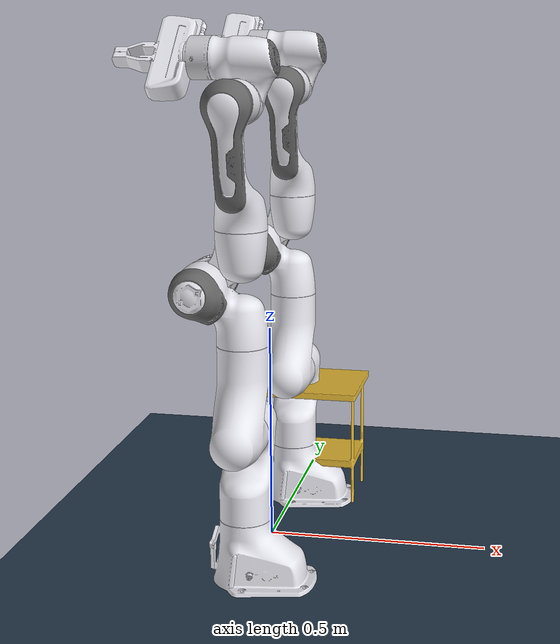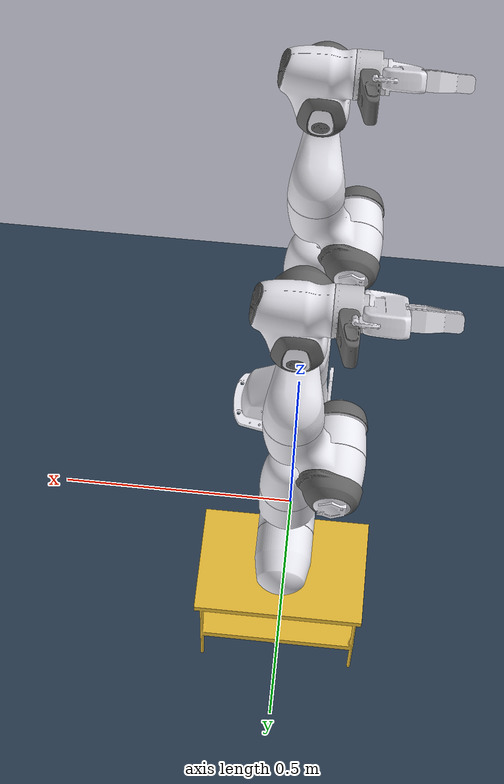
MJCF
<mujoco model="dual-panda v01">

    <include file="panda/assets/basic_scene.xml" />
    <include file="panda/assets/assets.xml" />
    <include file="panda/assets/gripper_assets.xml" />
    <include file="panda/assets/sensors.xml" />
    <compiler angle="radian" meshdir="" inertiagrouprange="0 0"/>
    <size nconmax="5000" njmax="5000"/>

    <!-- change this for different objects -->

    <include file="panda/assets/table.xml" />

    <compiler meshdir="" />
    <option noslip_iterations="20"> </option>
    <option cone="elliptic"> </option>
    <option><flag multiccd="enable"/></option>
    <option> <flag gravity="enable"/></option>
    <default>
        <default class='torso'>
            <geom group='0' contype='0' conaffinity='0' rgba=".95 .99 .92 1" />
        </default>/ </default>

    <worldbody>

        <body name='torso' childclass='torso'>

            <body name='leftarm' pos='0 -0.25 0' euler='0 0 3.14'>
                <include file="panda/assets/chainL.xml" />
            </body>

            <body name='rightarm' pos='0 0.25 0' euler='0 0 3.14'>
                <include file="panda/assets/chainR.xml" />
            </body>

        </body>

        <body name="collision_object" pos="0.0 0.3 0.2" quat="1 0 0 0">
            <joint type="free" name="object_virtual_joint" pos="0.0 0.0 0.0" damping="5" />
            <geom class="object_viz" mesh="table_viz" rgba="0.9019607843137255 0.7254901960784313 0.20392156862745098
            1" />
            <geom class="object_col" mesh="table2Part-0" />
            <geom class="object_col" mesh="table2Part-1" />
            <geom class="object_col" mesh="table2Part-2" />
            <geom class="object_col" mesh="table2Part-3" />
            <geom class="object_col" mesh="table2Part-4" />
            <geom class="object_col" mesh="table2Part-5" />
            <geom class="object_col" mesh="table2Part-6" />
            <geom class="object_col" mesh="table2Part-7" />
            <geom class="object_col" mesh="table2Part-8" />
            <geom class="object_col" mesh="table2Part-9" />
            <geom class="object_col" mesh="table2Part-10" />
            <geom class="object_col" mesh="table2Part-11" />
            <geom class="object_col" mesh="table2Part-12" />
            <geom class="object_col" mesh="table2Part-13" />
            <geom class="object_col" mesh="table2Part-14" />
            <geom class="object_col" mesh="table2Part-15" />
            <inertial pos="0 0 0" mass="4" diaginertia="6 2 4" />
        </body>

    </worldbody>

    <include file='panda/assets/actuatorL.xml' />
    <include file='panda/assets/gripper_actuatorL.xml' />
    <include file='panda/assets/actuatorR.xml' />
    <include file='panda/assets/gripper_actuatorR.xml' />
    <option timestep="0.002"/>

</mujoco>

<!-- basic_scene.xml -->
<mujocoinclude>
    <asset>
        <texture name="texplane" type="2d" builtin="checker" rgb1=".2 .3 .4" rgb2=".1 0.15 0.2"
                width="512" height="512"/>
        <material name="MatGnd" reflectance="0.5" texture="texplane" texrepeat="1 1" texuniform="true"/>
    </asset>

    <worldbody>
        <light directional="false" diffuse=".8 .8 .8" specular="0.3 0.3 0.3" pos="1  1 3" dir="-1 -1 -3"/>
        <light directional="false" diffuse=".8 .8 .8" specular="0.3 0.3 0.3" pos="1 -1 3" dir="-1 1 -3"/>
        <light directional="false" diffuse=".8 .8 .8" specular="0.3 0.3 0.3" pos="-1 0 3" dir="1 0 -3" />
        <geom name="ground" pos="0 0 0" size="5 5 10" material="MatGnd" type="plane" contype="1" conaffinity="1"/>
        <body name="targetL" mocap="true">
            <geom type="box" size=".05 .05 .05" contype="0" conaffinity="0" rgba=".6 .3 .3 0"/>
            <site type="sphere" size="0.01" rgba="0 0 1 0" group="1"/>
        </body>
        <body name="targetR" mocap="true">
            <geom type="box" size=".05 .05 .05" contype="0" conaffinity="0" rgba=".6 .3 .3 0"/>
            <site type="sphere" size="0.01" rgba="0 0 1 0" group="1"/>
        </body>
    </worldbody>
    <keyframe>
        <key name="home" qpos="-1.08336 -1.66423  -1.55909  -1.67529  1.46467  0.0244119  -2.12548 0.6570866009849246 -0.4437049375852182 0.8  -0.5 0.5 -0.5 0.5" ctrl="0 0 0 0 0 0 0"/>

        <!-- This is for monitor, set z as 0.157 -->

        <!-- this is for table -->

    </keyframe>
</mujocoinclude>

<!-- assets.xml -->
<mujocoinclude>
    <compiler angle="radian" />
    <option noslip_iterations="20"/>
    <option timestep="0.002"/>
    <size nuser_actuator="5"/>
    <option integrator="implicit"/>
    <asset>
        <mesh name="link0_col" file="./panda/meshes/collision/link0.stl"/>
        <mesh name="link1_col" file="./panda/meshes/collision/link1.stl"/>
        <mesh name="link2_col" file="./panda/meshes/collision/link2.stl"/>
        <mesh name="link3_col" file="./panda/meshes/collision/link3.stl"/>
        <mesh name="link4_col" file="./panda/meshes/collision/link4.stl"/>
        <mesh name="link5_col" file="./panda/meshes/collision/link5.stl"/>
        <mesh name="link6_col" file="./panda/meshes/collision/link6.stl"/>
        <mesh name="link7_col" file="./panda/meshes/collision/link7.stl"/>
        <mesh name="hand_col" file="./panda/meshes/collision/hand.stl"/>
        <mesh name="link0_viz" file="./panda/meshes/visual/link0.stl"/>
        <mesh name="link1_viz" file="./panda/meshes/visual/link1.stl"/>
        <mesh name="link2_viz" file="./panda/meshes/visual/link2.stl"/>
        <mesh name="link3_viz" file="./panda/meshes/visual/link3.stl"/>
        <mesh name="link3_dark_viz" file="./panda/meshes/visual/link3_dark.stl" scale="1.01 1.01 1.01"/>
        <mesh name="link4_viz" file="./panda/meshes/visual/link4.stl"/>
        <mesh name="link4_dark_viz" file="./panda/meshes/visual/link4_dark.stl" scale="1.01 1.01 1.01"/>
        <mesh name="link5_viz" file="./panda/meshes/visual/link5.stl"/>
        <mesh name="link5_dark_viz" file="./panda/meshes/visual/link5_dark.stl" scale="1.01 1.01 1.01"/>
        <mesh name="link6_viz" file="./panda/meshes/visual/link6.stl"/>
        <mesh name="link6_dark_viz" file="./panda/meshes/visual/link6_dark.stl" scale="1.01 1.01 1.01"/>
        <mesh name="link7_viz" file="./panda/meshes/visual/link7.stl"/>
        <mesh name="link7_dark_viz" file="./panda/meshes/visual/link7_dark.stl" scale="1.01 1.01 1.01"/>
        <mesh name="hand_viz" file="./panda/meshes/visual/hand.stl"/>
    </asset>

    <default>
        <default class = "object">
            <default class="object_viz">
                <geom contype="0" conaffinity="0" group="0" type="mesh" rgba=".92 .92 .95 1"/>
            </default>
            <default class="object_col">
                <geom contype="1" conaffinity="1" group="3" type="mesh" rgba=".5 .6 .7 1"/>
            </default>
        </default>
    </default>

    <default>
        <default class="panda">
            <joint pos="0 0 0" axis="0 0 1" limited="true"/>
            <default class="panda_viz">
                <geom contype="0" conaffinity="0" group="0" type="mesh" rgba=".92 .92 .95 1"/>
            </default>
            <default class="panda_grey_viz">
                <geom contype="0" conaffinity="0" group="0" type="mesh" rgba=".4 .4 .4 1"/>
            </default>

            <default class="panda_col">
                <geom contype="1" conaffinity="1" group="3" type="mesh" rgba=".5 .6 .7 1"/>
            </default>
            <default class="panda_arm">
                <joint damping="100"/>
            </default>
             <default class="panda_forearm">
                <joint damping="10"/>
            </default>
             <default class="panda_finger">
                <joint damping="10" armature='5'/>
                <geom friction="10 10 10" user="0" rgba="0.5 0.6 0.7 .4" contype="1" conaffinity="0" condim="6" group="3" />
                <position user="1002 40 2001 -0.0001 0.0001"/>
            </default>
        </default>
    </default>
</mujocoinclude>

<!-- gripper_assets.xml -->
<mujocoinclude>
    <asset>
        <mesh name="finger_col" file="./panda/meshes/collision/finger.stl" scale='1.75 1.0 1.75'/>
        <mesh name="finger_viz" file="./panda/meshes/visual/finger.stl" scale='1.75 1.0 1.75'/>
    </asset>

    <default>
        <default class="panda_overlay">
            <joint limited="false" damping="1000" armature="1" frictionloss="10"/>
            <geom contype="0" conaffinity="0" group="2" type="mesh" rgba=".42 0.42 0.42 .5"/>
        </default>
    </default>

    <sensor>
        <jointpos name="fr_fin_jp1" joint="left_panda_finger_joint1"/>
        <jointpos name="fr_fin_jp2" joint="left_panda_finger_joint2"/>
        <jointvel name="fr_fin_jv1" joint="left_panda_finger_joint1"/>
        <jointvel name="fr_fin_jv2" joint="left_panda_finger_joint2"/>
    </sensor>

</mujocoinclude>

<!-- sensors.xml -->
<mujocoinclude>

<!-- site force torque sensors -->

<!-- joint actuator force sensors -->
    <sensor>
        <jointactuatorfrc name="LAjaf1" joint="left_panda_joint1"/>
        <jointactuatorfrc name="LAjaf2" joint="left_panda_joint2"/>
        <jointactuatorfrc name="LAjaf3" joint="left_panda_joint3"/>
        <jointactuatorfrc name="LAjaf4" joint="left_panda_joint4"/>
        <jointactuatorfrc name="LAjaf5" joint="left_panda_joint5"/>
        <jointactuatorfrc name="LAjaf6" joint="left_panda_joint6"/>
        <jointactuatorfrc name="LAjaf7" joint="left_panda_joint7"/>

        <jointactuatorfrc name="RAjaf1" joint="right_panda_joint1"/>
        <jointactuatorfrc name="RAjaf2" joint="right_panda_joint2"/>
        <jointactuatorfrc name="RAjaf3" joint="right_panda_joint3"/>
        <jointactuatorfrc name="RAjaf4" joint="right_panda_joint4"/>
        <jointactuatorfrc name="RAjaf5" joint="right_panda_joint5"/>
        <jointactuatorfrc name="RAjaf6" joint="right_panda_joint6"/>
        <jointactuatorfrc name="RAjaf7" joint="right_panda_joint7"/>
    </sensor>

<!-- finger joint force sensors -->
    <sensor>
        <jointactuatorfrc name="LHjafF1" joint="left_panda_finger_joint1"/>
        <jointactuatorfrc name="LHjafF2" joint="left_panda_finger_joint2"/>
        <jointactuatorfrc name="RHjafF1" joint="right_panda_finger_joint1"/>
        <jointactuatorfrc name="RHjafF2" joint="right_panda_finger_joint2"/>
    </sensor>

</mujocoinclude>

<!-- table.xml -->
<mujocoinclude>
    <asset>
        <mesh name="table_viz" file="./panda/meshes/visual/objects/table.stl" scale="0.5 1 1" />
        <mesh name="tablePart-0" file="./panda/meshes/collision/objects/decompositions/table/tablePart-0.stl"
            scale="0.5 1 1" />
        <mesh name="tablePart-1" file="./panda/meshes/collision/objects/decompositions/table/tablePart-1.stl"
            scale="0.5 1 1" />
        <mesh name="tablePart-2" file="./panda/meshes/collision/objects/decompositions/table/tablePart-2.stl"
            scale="0.5 1 1" />
        <mesh name="tablePart-3" file="./panda/meshes/collision/objects/decompositions/table/tablePart-3.stl"
            scale="0.5 1 1" />
        <mesh name="tablePart-4" file="./panda/meshes/collision/objects/decompositions/table/tablePart-4.stl"
            scale="0.5 1 1" />
        <mesh name="tablePart-5" file="./panda/meshes/collision/objects/decompositions/table/tablePart-5.stl"
            scale="0.5 1 1" />
        <mesh name="tablePart-6" file="./panda/meshes/collision/objects/decompositions/table/tablePart-6.stl"
            scale="0.5 1 1" />
        <mesh name="tablePart-7" file="./panda/meshes/collision/objects/decompositions/table/tablePart-7.stl"
            scale="0.5 1 1" />
        <mesh name="tablePart-8" file="./panda/meshes/collision/objects/decompositions/table/tablePart-8.stl"
            scale="0.5 1 1" />
        <mesh name="tablePart-9" file="./panda/meshes/collision/objects/decompositions/table/tablePart-9.stl"
            scale="0.5 1 1" />
        <mesh name="tablePart-10" file="./panda/meshes/collision/objects/decompositions/table/tablePart-10.stl"
            scale="0.5 1 1" />
        <mesh name="tablePart-11" file="./panda/meshes/collision/objects/decompositions/table/tablePart-11.stl"
            scale="0.5 1 1" />
        <mesh name="tablePart-12" file="./panda/meshes/collision/objects/decompositions/table/tablePart-12.stl"
            scale="0.5 1 1" />
        <mesh name="tablePart-13" file="./panda/meshes/collision/objects/decompositions/table/tablePart-13.stl"
            scale="0.5 1 1" />
        <mesh name="tablePart-14" file="./panda/meshes/collision/objects/decompositions/table/tablePart-14.stl"
            scale="0.5 1 1" />
        <mesh name="tablePart-15" file="./panda/meshes/collision/objects/decompositions/table/tablePart-15.stl"
            scale="0.5 1 1" />
    </asset>
</mujocoinclude>

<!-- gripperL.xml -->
<mujoco>
    <body name="left_panda_hand" pos="0 0 0.107" euler="0 0 1.57">
        <inertial pos="0 0 0" euler="0 0 0" mass="0.38" diaginertia="0.1 0.1 0.1" />
        <geom class="panda_viz" mesh="hand_viz"/>
        <geom class="panda_col" mesh="hand_col"/>

        <body name="left_panda_leftfinger" pos="0 0 0.0584" quat="1 0 0 0">
            <joint name="left_panda_finger_joint1"  axis="0 1 0" type="slide" range="0 0.04" damping="100" armature='5'/>
            <geom class="panda_viz" mesh="finger_viz"/>
            <geom class="panda_col" mesh="finger_col" mass="0.01"/>
        </body>

        <body name="left_panda_rightfinger" pos="0 0 0.0584" quat="1 0 0 0">
            <joint name="left_panda_finger_joint2" axis="0 -1 0" type="slide" range="0 0.04" damping="100" armature='5'/>
            <geom quat="0 0 0 1" class="panda_viz" mesh="finger_viz"/>
            <geom quat="0 0 0 1" class="panda_col" mesh="finger_col" mass="0.01" condim="6" friction="10 10 10"/>
        </body>
    </body>
</mujoco>

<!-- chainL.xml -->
<mujocoinclude>
    <body name="left_panda_link0" childclass="panda" >
        <inertial pos="0 0 0" mass="3.06" diaginertia="0.3 0.3 0.3" />
        <geom class="panda_viz" mesh="link0_viz"/>
        <geom class="panda_col" mesh="link0_col"/>
        <body name="left_panda_link1" pos="0 0 0.333">
            <inertial pos="3.875e-03 2.081e-03 -0.1750" mass="4.970684" fullinertia="7.0337e-01 7.0661e-01 9.1170e-03 -1.3900e-04 6.7720e-03 1.9169e-02" />
            <joint name="left_panda_joint1" range="-2.8973 2.8973" class="panda_arm" frictionloss="5"/>
            <geom class="panda_viz" mesh="link1_viz"/>
            <geom class="panda_col" mesh="link1_col"/>
            <body name="left_panda_link2" pos="0 0 0" quat="0.707107 -0.707107 0 0">
                <inertial pos="-3.141e-03 -2.872e-02 3.495e-03" mass="0.646926" fullinertia="7.9620e-03 2.8110e-02 2.5995e-02 -3.9250e-03 1.0254e-02 7.0400e-04" />
                <joint name="left_panda_joint2" range="-1.7628 1.7628" class="panda_arm" frictionloss="2"/>
                <geom class="panda_viz" mesh="link2_viz"/>
                <geom class="panda_col" mesh="link2_col"/>
                <body name="left_panda_link3" pos="0 -0.316 0" quat="0.707107 0.707107 0 0">
                    <inertial pos="2.7518e-02 3.9252e-02 -6.6502e-02" mass="3.228604" fullinertia="3.7242e-02 3.6155e-02 1.0830e-02 -4.7610e-03 -1.1396e-02 -1.2805e-02" />
                    <joint name="left_panda_joint3" range="-2.8973 2.8973" class="panda_arm" frictionloss="2"/>
                    <geom class="panda_viz" mesh="link3_viz"/>
                    <geom class="panda_grey_viz" mesh="link3_dark_viz" pos="0 .001 0"/>
                    <geom class="panda_col" mesh="link3_col"/>
                    <body name="left_panda_link4" pos="0.0825 0 0" quat="0.707107 0.707107 0 0">
                        <inertial pos="-5.317e-02 1.04419e-01 2.7454e-02" mass="3.587895" fullinertia="2.5853e-02 1.9552e-02 2.8323e-02 7.7960e-03 -1.3320e-03 8.6410e-03" />
                        <joint name="left_panda_joint4" range="-3.0718 -0.4" class="panda_arm" frictionloss="0.5"/>
                        <geom class="panda_viz" mesh="link4_viz"/>
                        <geom class="panda_grey_viz" mesh="link4_dark_viz"/>
                        <geom class="panda_col" mesh="link4_col"/>
                        <body name="left_panda_link5" pos="-0.0825 0.384 0" quat="0.707107 -0.707107 0 0">
                            <inertial pos="-1.1953e-02 4.1065e-02 -3.8437e-02" mass="1.225946" fullinertia="3.5549e-02 2.9474e-02 8.6270e-03 -2.1170e-03 -4.0370e-03 2.2900e-04" />
                            <joint name="left_panda_joint5" range="-2.8973 2.8973" class="panda_forearm" frictionloss="1"/>
                            <geom class="panda_viz" mesh="link5_viz"/>
                            <geom class="panda_grey_viz" mesh="link5_dark_viz"/>
                            <geom class="panda_col" mesh="link5_col" mass="3.00049"/>
                            <body name="left_panda_link6" pos="0 0 0" euler='1.57 0 1.57'>
                                <inertial pos="6.0149e-02 -1.4117e-02 -1.0517e-02" mass="1.666555" fullinertia="1.9640e-03 4.3540e-03 5.4330e-03 1.0900e-04 -1.1580e-03 3.4100e-04" />
                                <joint name="left_panda_joint6" range="-1.6573 2.1127" class="panda_forearm" frictionloss="0.5"/>
                                <geom class="panda_viz" mesh="link6_viz"/>
                                <geom class="panda_grey_viz" mesh="link6_dark_viz"/>
                                <geom class="panda_col" mesh="link6_col"/>
                                <body name="left_panda_link7" pos="0.088 0 0" euler='1.57 0 0.7854'>
                                    <inertial pos="1.0517e-02 -4.252e-03 6.1597e-02" mass="7.35522e-01" fullinertia="1.2516e-02 1.0027e-02 4.8150e-03 -4.2800e-04 -1.1960e-03 -7.4100e-04" />
                                    <joint name="left_panda_joint7" range="-2.8973 2.8973" class="panda_forearm" frictionloss="0.5"/>
                                    <geom class="panda_viz" mesh="link7_viz" rgba=".8 .8 .82 1"/>
                                    <geom class="panda_grey_viz" mesh="link7_dark_viz" pos="0 0 -.0008"/>
                                    <geom class="panda_col" mesh="link7_col"/>
                                    <camera name="Franka_wrist_cam" pos=".050 -.050 0.15" euler="2.95 0.2 -.787"/>
                                    <site name='end_effector' pos='0 0 0.165' size='0.01' euler='1.57 0 0'/>

                                    <!-- End Effector -->
                                    <body name="left_panda_gripper">
                                       <include file = "./panda/assets/gripperL.xml" />
                                       <!-- Mocap-->

                                    </body>
                                </body>
                            </body>
                        </body>
                    </body>
                </body>
            </body>
        </body>
    </body>

</mujocoinclude>

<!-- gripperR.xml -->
<mujoco>
    <body name="right_panda_hand" pos="0 0 0.107" euler="0 0 1.57">
        <inertial pos="0 0 0" euler="0 0 0" mass="0.38" diaginertia="0.1 0.1 0.1" />
        <geom class="panda_viz" mesh="hand_viz"/>
        <geom class="panda_col" mesh="hand_col"/>

        <body name="right_panda_leftfinger" pos="0 0 0.0584" quat="1 0 0 0">
            <joint name="right_panda_finger_joint1"  axis="0 1 0" type="slide" range="0 0.04" damping="100" armature='5'/>
            <geom class="panda_viz" mesh="finger_viz"/>
            <geom class="panda_col" mesh="finger_col" mass="0.01"/>
        </body>

        <body name="right_panda_rightfinger" pos="0 0 0.0584" quat="1 0 0 0">
            <joint name="right_panda_finger_joint2" axis="0 -1 0" type="slide" range="0 0.04" damping="100" armature='5'/>
            <geom quat="0 0 0 1" class="panda_viz" mesh="finger_viz"/>
            <geom quat="0 0 0 1" class="panda_col" mesh="finger_col" mass="0.01" condim="6" friction="10 10 10"/>
        </body>
    </body>
</mujoco>

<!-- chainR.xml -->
<mujocoinclude>
    <body name="right_panda_link0" childclass="panda" >
        <inertial pos="0 0 0" mass="3.06" diaginertia="0.3 0.3 0.3" />
        <geom class="panda_viz" mesh="link0_viz"/>
        <geom class="panda_col" mesh="link0_col"/>
        <body name="right_panda_link1" pos="0 0 0.333">
            <inertial pos="3.875e-03 2.081e-03 -0.1750" mass="4.970684" fullinertia="7.0337e-01 7.0661e-01 9.1170e-03 -1.3900e-04 6.7720e-03 1.9169e-02" />
            <joint name="right_panda_joint1" range="-2.9671 2.9671" class="panda_arm" frictionloss="5"/>
            <geom class="panda_viz" mesh="link1_viz"/>
            <geom class="panda_col" mesh="link1_col"/>
            <body name="right_panda_link2" pos="0 0 0" quat="0.707107 -0.707107 0 0">
                <inertial pos="-3.141e-03 -2.872e-02 3.495e-03" mass="0.646926" fullinertia="7.9620e-03 2.8110e-02 2.5995e-02 -3.9250e-03 1.0254e-02 7.0400e-04" />
                <joint name="right_panda_joint2" range="-1.8326 1.8326" class="panda_arm" frictionloss="2"/>
                <geom class="panda_viz" mesh="link2_viz"/>
                <geom class="panda_col" mesh="link2_col"/>
                <body name="right_panda_link3" pos="0 -0.316 0" quat="0.707107 0.707107 0 0">
                    <inertial pos="2.7518e-02 3.9252e-02 -6.6502e-02" mass="3.228604" fullinertia="3.7242e-02 3.6155e-02 1.0830e-02 -4.7610e-03 -1.1396e-02 -1.2805e-02" />
                    <joint name="right_panda_joint3" range="-2.9671 2.9671" class="panda_arm" frictionloss="2"/>
                    <geom class="panda_viz" mesh="link3_viz"/>
                    <geom class="panda_grey_viz" mesh="link3_dark_viz" pos="0 .001 0"/>
                    <geom class="panda_col" mesh="link3_col"/>
                    <body name="right_panda_link4" pos="0.0825 0 0" quat="0.707107 0.707107 0 0">
                        <inertial pos="-5.317e-02 1.04419e-01 2.7454e-02" mass="3.587895" fullinertia="2.5853e-02 1.9552e-02 2.8323e-02 7.7960e-03 -1.3320e-03 8.6410e-03" />
                        <joint name="right_panda_joint4" range="-3.0718 -0.4" class="panda_arm" frictionloss="0.5"/>
                        <geom class="panda_viz" mesh="link4_viz"/>
                        <geom class="panda_grey_viz" mesh="link4_dark_viz"/>
                        <geom class="panda_col" mesh="link4_col"/>
                        <body name="right_panda_link5" pos="-0.0825 0.384 0" quat="0.707107 -0.707107 0 0">
                            <inertial pos="-1.1953e-02 4.1065e-02 -3.8437e-02" mass="1.225946" fullinertia="3.5549e-02 2.9474e-02 8.6270e-03 -2.1170e-03 -4.0370e-03 2.2900e-04" />
                            <joint name="right_panda_joint5" range="-2.9671 2.9671" class="panda_forearm" frictionloss="1"/>
                            <geom class="panda_viz" mesh="link5_viz"/>
                            <geom class="panda_grey_viz" mesh="link5_dark_viz"/>
                            <geom class="panda_col" mesh="link5_col"/>
                            <body name="right_panda_link6" pos="0 0 0" euler='1.57 0 1.57'>
                                <inertial pos="6.0149e-02 -1.4117e-02 -1.0517e-02" mass="1.666555" fullinertia="1.9640e-03 4.3540e-03 5.4330e-03 1.0900e-04 -1.1580e-03 3.4100e-04" />
                                <joint name="right_panda_joint6" range="-1.6573 2.1127" class="panda_forearm" frictionloss="0.5"/>
                                <geom class="panda_viz" mesh="link6_viz"/>
                                <geom class="panda_grey_viz" mesh="link6_dark_viz"/>
                                <geom class="panda_col" mesh="link6_col"/>
                                <body name="right_panda_link7" pos="0.088 0 0" euler='1.57 0 0.7854'>
                                    <inertial pos="1.0517e-02 -4.252e-03 6.1597e-02" mass="7.35522e-01" fullinertia="1.2516e-02 1.0027e-02 4.8150e-03 -4.2800e-04 -1.1960e-03 -7.4100e-04" />
                                    <joint name="right_panda_joint7" range="-2.8973 2.8973" class="panda_forearm" frictionloss="0.5"/>
                                    <geom class="panda_viz" mesh="link7_viz" rgba=".8 .8 .82 1"/>
                                    <geom class="panda_grey_viz" mesh="link7_dark_viz" pos="0 0 -.0008"/>
                                    <geom class="panda_col" mesh="link7_col"/>
                                    <site name='end_effector1' pos='0 0 0.165' size='0.01' euler='1.57 0 0'/>

                                    <!-- End Effector -->
                                    <body name="right_panda_gripper">
                                        <include file="./panda/assets/gripperR.xml"/>
                                    </body>
                                </body>
                            </body>
                        </body>
                    </body>
                </body>
            </body>
        </body>
    </body>
</mujocoinclude>

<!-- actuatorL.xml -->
<mujocoinclude>
    <actuator>
        <motor class="panda" name="left_panda_joint1" joint="left_panda_joint1"  forcerange="-87 87" ctrlrange="-87 87"/>
        <motor class="panda" name="left_panda_joint2" joint="left_panda_joint2"  forcerange="-87 87" ctrlrange="-87 87"/>
        <motor class="panda" name="left_panda_joint3" joint="left_panda_joint3"  forcerange="-87 87"   ctrlrange="-87 87"/>
        <motor class="panda" name="left_panda_joint4" joint="left_panda_joint4"  forcerange="-87 87"   ctrlrange="-87 87"/>
        <motor class="panda" name="left_panda_joint5" joint="left_panda_joint5"  forcerange="-12 12"   ctrlrange="-12 12"/>
        <motor class="panda" name="left_panda_joint6" joint="left_panda_joint6"  forcerange="-12 12"   ctrlrange="-12 12"/>
        <motor class="panda" name="left_panda_joint7" joint="left_panda_joint7"  forcerange="-12 12"   ctrlrange="-12 12"/>
    </actuator>
</mujocoinclude>

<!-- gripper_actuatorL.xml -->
<mujocoinclude>
    <actuator>
        <position name="L_gripper_finger_joint1" joint="left_panda_finger_joint1" class="panda_finger" kp="5000" forcerange="-70 70" ctrlrange="0 0.04"/> velocity=".2"
        <position name="L_gripper_finger_joint2" joint="left_panda_finger_joint2" class="panda_finger" kp="5000" forcerange="-70 70" ctrlrange="0 0.04"/> velocity=".2"
    </actuator>
</mujocoinclude>

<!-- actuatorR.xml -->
<mujocoinclude>
    <actuator>
        <motor class="panda" name="right_panda_joint1" joint="right_panda_joint1" forcerange="-8700 8700" ctrlrange="-8700 8700"/>
        <motor class="panda" name="right_panda_joint2" joint="right_panda_joint2" forcerange="-8700 8700" ctrlrange="-8700 8700"/>
        <motor class="panda" name="right_panda_joint3" joint="right_panda_joint3" forcerange="-8700 8700"   ctrlrange="-8700 8700"/>
        <motor class="panda" name="right_panda_joint4" joint="right_panda_joint4" forcerange="-8700 8700"   ctrlrange="-8700 8700"/>
        <motor class="panda" name="right_panda_joint5" joint="right_panda_joint5" forcerange="-1200 1200"   ctrlrange="-1200 1200"/>
        <motor class="panda" name="right_panda_joint6" joint="right_panda_joint6" forcerange="-1200 1200"   ctrlrange="-1200 1200"/>
        <motor class="panda" name="right_panda_joint7" joint="right_panda_joint7" forcerange="-1200 1200"   ctrlrange="-1200 1200"/>
    </actuator>
</mujocoinclude>

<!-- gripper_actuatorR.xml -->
<mujocoinclude>
    <actuator>
        <position name="R_gripper_finger_joint1" joint="right_panda_finger_joint1" class="panda_finger" kp="5000" forcerange="-70 70" ctrlrange="0 0.04"/> velocity=".2"
        <position name="R_gripper_finger_joint2" joint="right_panda_finger_joint2" class="panda_finger" kp="5000" forcerange="-70 70" ctrlrange="0 0.04"/> velocity=".2"
    </actuator>
</mujocoinclude>
